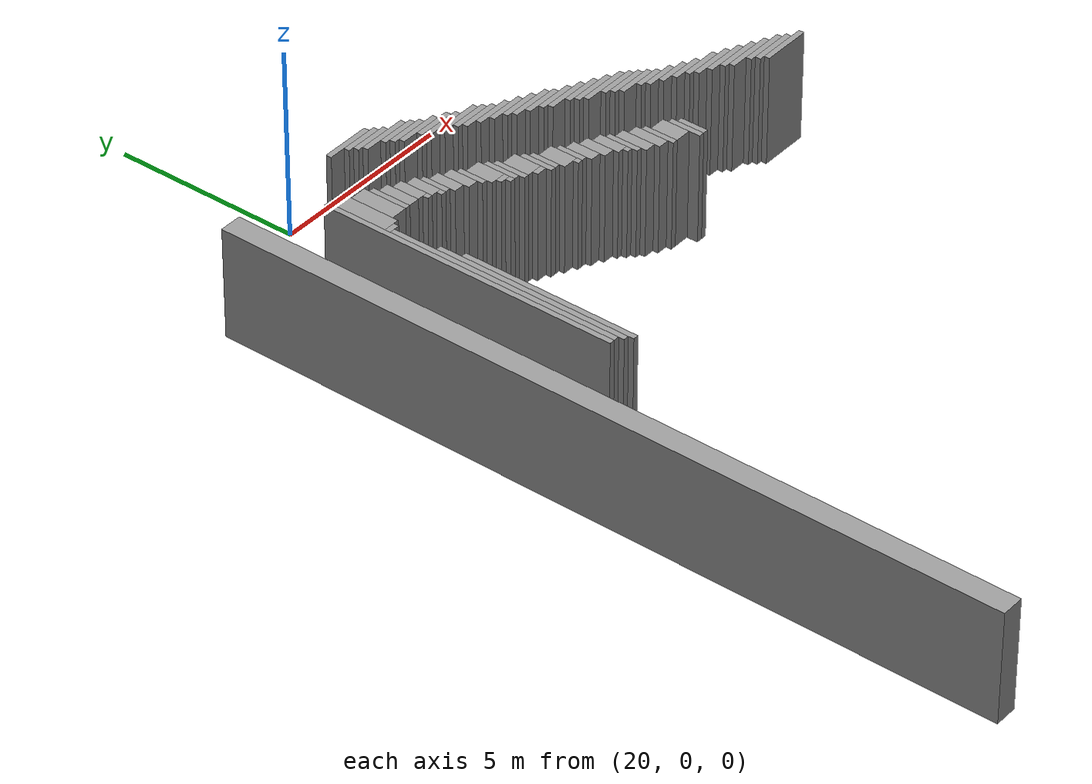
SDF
<sdf version="1.4">
 <model name="FunWorld1">
  <static>1</static>
  <link name="Wall_0">
   <collision name="Wall_0_Collision">
    <geometry><box><size>0.60000 21.15000 3.00000</size></box></geometry>
    <pose>18.00000 -10.57500 0 0 0 0.00000</pose>
   </collision>
   <visual name="Wall_0_Visual">
    <geometry><box><size>0.60000 21.15000 3.00000</size></box></geometry>
    <material>
     <script><uri>file://media/materials/scripts/gazebo.material</uri><name>Gazebo/Grey</name></script>
    </material>
    <pose>18.00000 -10.57500 0 0 0 0.00000</pose>
   </visual>
  </link>
  <link name="Wall_1">
   <collision name="Wall_1_Collision">
    <geometry><box><size>1.35000 0.15000 3.00000</size></box></geometry>
    <pose>21.97500 -0.07500 0 0 0 0.00000</pose>
   </collision>
   <visual name="Wall_1_Visual">
    <geometry><box><size>1.35000 0.15000 3.00000</size></box></geometry>
    <material>
     <script><uri>file://media/materials/scripts/gazebo.material</uri><name>Gazebo/Grey</name></script>
    </material>
    <pose>21.97500 -0.07500 0 0 0 0.00000</pose>
   </visual>
  </link>
  <link name="Wall_2">
   <collision name="Wall_2_Collision">
    <geometry><box><size>1.05000 0.15000 3.00000</size></box></geometry>
    <pose>22.27500 -0.22500 0 0 0 0.00000</pose>
   </collision>
   <visual name="Wall_2_Visual">
    <geometry><box><size>1.05000 0.15000 3.00000</size></box></geometry>
    <material>
     <script><uri>file://media/materials/scripts/gazebo.material</uri><name>Gazebo/Grey</name></script>
    </material>
    <pose>22.27500 -0.22500 0 0 0 0.00000</pose>
   </visual>
  </link>
  <link name="Wall_3">
   <collision name="Wall_3_Collision">
    <geometry><box><size>1.05000 0.15000 3.00000</size></box></geometry>
    <pose>22.42500 -0.37500 0 0 0 0.00000</pose>
   </collision>
   <visual name="Wall_3_Visual">
    <geometry><box><size>1.05000 0.15000 3.00000</size></box></geometry>
    <material>
     <script><uri>file://media/materials/scripts/gazebo.material</uri><name>Gazebo/Grey</name></script>
    </material>
    <pose>22.42500 -0.37500 0 0 0 0.00000</pose>
   </visual>
  </link>
  <link name="Wall_4">
   <collision name="Wall_4_Collision">
    <geometry><box><size>1.35000 0.15000 3.00000</size></box></geometry>
    <pose>22.72500 -0.52500 0 0 0 0.00000</pose>
   </collision>
   <visual name="Wall_4_Visual">
    <geometry><box><size>1.35000 0.15000 3.00000</size></box></geometry>
    <material>
     <script><uri>file://media/materials/scripts/gazebo.material</uri><name>Gazebo/Grey</name></script>
    </material>
    <pose>22.72500 -0.52500 0 0 0 0.00000</pose>
   </visual>
  </link>
  <link name="Wall_5">
   <collision name="Wall_5_Collision">
    <geometry><box><size>1.05000 0.15000 3.00000</size></box></geometry>
    <pose>23.02500 -0.67500 0 0 0 0.00000</pose>
   </collision>
   <visual name="Wall_5_Visual">
    <geometry><box><size>1.05000 0.15000 3.00000</size></box></geometry>
    <material>
     <script><uri>file://media/materials/scripts/gazebo.material</uri><name>Gazebo/Grey</name></script>
    </material>
    <pose>23.02500 -0.67500 0 0 0 0.00000</pose>
   </visual>
  </link>
  <link name="Wall_6">
   <collision name="Wall_6_Collision">
    <geometry><box><size>1.05000 0.15000 3.00000</size></box></geometry>
    <pose>23.17500 -0.82500 0 0 0 0.00000</pose>
   </collision>
   <visual name="Wall_6_Visual">
    <geometry><box><size>1.05000 0.15000 3.00000</size></box></geometry>
    <material>
     <script><uri>file://media/materials/scripts/gazebo.material</uri><name>Gazebo/Grey</name></script>
    </material>
    <pose>23.17500 -0.82500 0 0 0 0.00000</pose>
   </visual>
  </link>
  <link name="Wall_7">
   <collision name="Wall_7_Collision">
    <geometry><box><size>1.20000 0.15000 3.00000</size></box></geometry>
    <pose>23.40000 -0.97500 0 0 0 0.00000</pose>
   </collision>
   <visual name="Wall_7_Visual">
    <geometry><box><size>1.20000 0.15000 3.00000</size></box></geometry>
    <material>
     <script><uri>file://media/materials/scripts/gazebo.material</uri><name>Gazebo/Grey</name></script>
    </material>
    <pose>23.40000 -0.97500 0 0 0 0.00000</pose>
   </visual>
  </link>
  <link name="Wall_8">
   <collision name="Wall_8_Collision">
    <geometry><box><size>1.05000 0.15000 3.00000</size></box></geometry>
    <pose>23.77500 -1.12500 0 0 0 0.00000</pose>
   </collision>
   <visual name="Wall_8_Visual">
    <geometry><box><size>1.05000 0.15000 3.00000</size></box></geometry>
    <material>
     <script><uri>file://media/materials/scripts/gazebo.material</uri><name>Gazebo/Grey</name></script>
    </material>
    <pose>23.77500 -1.12500 0 0 0 0.00000</pose>
   </visual>
  </link>
  <link name="Wall_9">
   <collision name="Wall_9_Collision">
    <geometry><box><size>0.15000 8.10000 3.00000</size></box></geometry>
    <pose>19.87500 -5.25000 0 0 0 0.00000</pose>
   </collision>
   <visual name="Wall_9_Visual">
    <geometry><box><size>0.15000 8.10000 3.00000</size></box></geometry>
    <material>
     <script><uri>file://media/materials/scripts/gazebo.material</uri><name>Gazebo/Grey</name></script>
    </material>
    <pose>19.87500 -5.25000 0 0 0 0.00000</pose>
   </visual>
  </link>
  <link name="Wall_10">
   <collision name="Wall_10_Collision">
    <geometry><box><size>1.05000 0.15000 3.00000</size></box></geometry>
    <pose>23.92500 -1.27500 0 0 0 0.00000</pose>
   </collision>
   <visual name="Wall_10_Visual">
    <geometry><box><size>1.05000 0.15000 3.00000</size></box></geometry>
    <material>
     <script><uri>file://media/materials/scripts/gazebo.material</uri><name>Gazebo/Grey</name></script>
    </material>
    <pose>23.92500 -1.27500 0 0 0 0.00000</pose>
   </visual>
  </link>
  <link name="Wall_11">
   <collision name="Wall_11_Collision">
    <geometry><box><size>0.45000 1.50000 3.00000</size></box></geometry>
    <pose>20.17500 -2.10000 0 0 0 0.00000</pose>
   </collision>
   <visual name="Wall_11_Visual">
    <geometry><box><size>0.45000 1.50000 3.00000</size></box></geometry>
    <material>
     <script><uri>file://media/materials/scripts/gazebo.material</uri><name>Gazebo/Grey</name></script>
    </material>
    <pose>20.17500 -2.10000 0 0 0 0.00000</pose>
   </visual>
  </link>
  <link name="Wall_12">
   <collision name="Wall_12_Collision">
    <geometry><box><size>1.20000 0.15000 3.00000</size></box></geometry>
    <pose>24.30000 -1.42500 0 0 0 0.00000</pose>
   </collision>
   <visual name="Wall_12_Visual">
    <geometry><box><size>1.20000 0.15000 3.00000</size></box></geometry>
    <material>
     <script><uri>file://media/materials/scripts/gazebo.material</uri><name>Gazebo/Grey</name></script>
    </material>
    <pose>24.30000 -1.42500 0 0 0 0.00000</pose>
   </visual>
  </link>
  <link name="Wall_13">
   <collision name="Wall_13_Collision">
    <geometry><box><size>0.45000 1.20000 3.00000</size></box></geometry>
    <pose>20.62500 -2.10000 0 0 0 0.00000</pose>
   </collision>
   <visual name="Wall_13_Visual">
    <geometry><box><size>0.45000 1.20000 3.00000</size></box></geometry>
    <material>
     <script><uri>file://media/materials/scripts/gazebo.material</uri><name>Gazebo/Grey</name></script>
    </material>
    <pose>20.62500 -2.10000 0 0 0 0.00000</pose>
   </visual>
  </link>
  <link name="Wall_14">
   <collision name="Wall_14_Collision">
    <geometry><box><size>1.05000 0.15000 3.00000</size></box></geometry>
    <pose>24.52500 -1.57500 0 0 0 0.00000</pose>
   </collision>
   <visual name="Wall_14_Visual">
    <geometry><box><size>1.05000 0.15000 3.00000</size></box></geometry>
    <material>
     <script><uri>file://media/materials/scripts/gazebo.material</uri><name>Gazebo/Grey</name></script>
    </material>
    <pose>24.52500 -1.57500 0 0 0 0.00000</pose>
   </visual>
  </link>
  <link name="Wall_15">
   <collision name="Wall_15_Collision">
    <geometry><box><size>0.15000 1.05000 3.00000</size></box></geometry>
    <pose>20.92500 -2.17500 0 0 0 0.00000</pose>
   </collision>
   <visual name="Wall_15_Visual">
    <geometry><box><size>0.15000 1.05000 3.00000</size></box></geometry>
    <material>
     <script><uri>file://media/materials/scripts/gazebo.material</uri><name>Gazebo/Grey</name></script>
    </material>
    <pose>20.92500 -2.17500 0 0 0 0.00000</pose>
   </visual>
  </link>
  <link name="Wall_16">
   <collision name="Wall_16_Collision">
    <geometry><box><size>1.05000 0.15000 3.00000</size></box></geometry>
    <pose>24.67500 -1.72500 0 0 0 0.00000</pose>
   </collision>
   <visual name="Wall_16_Visual">
    <geometry><box><size>1.05000 0.15000 3.00000</size></box></geometry>
    <material>
     <script><uri>file://media/materials/scripts/gazebo.material</uri><name>Gazebo/Grey</name></script>
    </material>
    <pose>24.67500 -1.72500 0 0 0 0.00000</pose>
   </visual>
  </link>
  <link name="Wall_17">
   <collision name="Wall_17_Collision">
    <geometry><box><size>0.30000 0.90000 3.00000</size></box></geometry>
    <pose>21.15000 -2.25000 0 0 0 0.00000</pose>
   </collision>
   <visual name="Wall_17_Visual">
    <geometry><box><size>0.30000 0.90000 3.00000</size></box></geometry>
    <material>
     <script><uri>file://media/materials/scripts/gazebo.material</uri><name>Gazebo/Grey</name></script>
    </material>
    <pose>21.15000 -2.25000 0 0 0 0.00000</pose>
   </visual>
  </link>
  <link name="Wall_18">
   <collision name="Wall_18_Collision">
    <geometry><box><size>1.05000 0.15000 3.00000</size></box></geometry>
    <pose>24.97500 -1.87500 0 0 0 0.00000</pose>
   </collision>
   <visual name="Wall_18_Visual">
    <geometry><box><size>1.05000 0.15000 3.00000</size></box></geometry>
    <material>
     <script><uri>file://media/materials/scripts/gazebo.material</uri><name>Gazebo/Grey</name></script>
    </material>
    <pose>24.97500 -1.87500 0 0 0 0.00000</pose>
   </visual>
  </link>
  <link name="Wall_19">
   <collision name="Wall_19_Collision">
    <geometry><box><size>0.30000 0.75000 3.00000</size></box></geometry>
    <pose>21.45000 -2.32500 0 0 0 0.00000</pose>
   </collision>
   <visual name="Wall_19_Visual">
    <geometry><box><size>0.30000 0.75000 3.00000</size></box></geometry>
    <material>
     <script><uri>file://media/materials/scripts/gazebo.material</uri><name>Gazebo/Grey</name></script>
    </material>
    <pose>21.45000 -2.32500 0 0 0 0.00000</pose>
   </visual>
  </link>
  <link name="Wall_20">
   <collision name="Wall_20_Collision">
    <geometry><box><size>1.05000 0.15000 3.00000</size></box></geometry>
    <pose>25.27500 -2.02500 0 0 0 0.00000</pose>
   </collision>
   <visual name="Wall_20_Visual">
    <geometry><box><size>1.05000 0.15000 3.00000</size></box></geometry>
    <material>
     <script><uri>file://media/materials/scripts/gazebo.material</uri><name>Gazebo/Grey</name></script>
    </material>
    <pose>25.27500 -2.02500 0 0 0 0.00000</pose>
   </visual>
  </link>
  <link name="Wall_21">
   <collision name="Wall_21_Collision">
    <geometry><box><size>0.30000 0.75000 3.00000</size></box></geometry>
    <pose>21.75000 -2.47500 0 0 0 0.00000</pose>
   </collision>
   <visual name="Wall_21_Visual">
    <geometry><box><size>0.30000 0.75000 3.00000</size></box></geometry>
    <material>
     <script><uri>file://media/materials/scripts/gazebo.material</uri><name>Gazebo/Grey</name></script>
    </material>
    <pose>21.75000 -2.47500 0 0 0 0.00000</pose>
   </visual>
  </link>
  <link name="Wall_22">
   <collision name="Wall_22_Collision">
    <geometry><box><size>1.05000 0.15000 3.00000</size></box></geometry>
    <pose>25.57500 -2.17500 0 0 0 0.00000</pose>
   </collision>
   <visual name="Wall_22_Visual">
    <geometry><box><size>1.05000 0.15000 3.00000</size></box></geometry>
    <material>
     <script><uri>file://media/materials/scripts/gazebo.material</uri><name>Gazebo/Grey</name></script>
    </material>
    <pose>25.57500 -2.17500 0 0 0 0.00000</pose>
   </visual>
  </link>
  <link name="Wall_23">
   <collision name="Wall_23_Collision">
    <geometry><box><size>0.15000 0.75000 3.00000</size></box></geometry>
    <pose>21.97500 -2.62500 0 0 0 0.00000</pose>
   </collision>
   <visual name="Wall_23_Visual">
    <geometry><box><size>0.15000 0.75000 3.00000</size></box></geometry>
    <material>
     <script><uri>file://media/materials/scripts/gazebo.material</uri><name>Gazebo/Grey</name></script>
    </material>
    <pose>21.97500 -2.62500 0 0 0 0.00000</pose>
   </visual>
  </link>
  <link name="Wall_24">
   <collision name="Wall_24_Collision">
    <geometry><box><size>1.20000 0.15000 3.00000</size></box></geometry>
    <pose>25.80000 -2.32500 0 0 0 0.00000</pose>
   </collision>
   <visual name="Wall_24_Visual">
    <geometry><box><size>1.20000 0.15000 3.00000</size></box></geometry>
    <material>
     <script><uri>file://media/materials/scripts/gazebo.material</uri><name>Gazebo/Grey</name></script>
    </material>
    <pose>25.80000 -2.32500 0 0 0 0.00000</pose>
   </visual>
  </link>
  <link name="Wall_25">
   <collision name="Wall_25_Collision">
    <geometry><box><size>0.30000 0.75000 3.00000</size></box></geometry>
    <pose>22.20000 -2.77500 0 0 0 0.00000</pose>
   </collision>
   <visual name="Wall_25_Visual">
    <geometry><box><size>0.30000 0.75000 3.00000</size></box></geometry>
    <material>
     <script><uri>file://media/materials/scripts/gazebo.material</uri><name>Gazebo/Grey</name></script>
    </material>
    <pose>22.20000 -2.77500 0 0 0 0.00000</pose>
   </visual>
  </link>
  <link name="Wall_26">
   <collision name="Wall_26_Collision">
    <geometry><box><size>1.05000 0.15000 3.00000</size></box></geometry>
    <pose>26.02500 -2.47500 0 0 0 0.00000</pose>
   </collision>
   <visual name="Wall_26_Visual">
    <geometry><box><size>1.05000 0.15000 3.00000</size></box></geometry>
    <material>
     <script><uri>file://media/materials/scripts/gazebo.material</uri><name>Gazebo/Grey</name></script>
    </material>
    <pose>26.02500 -2.47500 0 0 0 0.00000</pose>
   </visual>
  </link>
  <link name="Wall_27">
   <collision name="Wall_27_Collision">
    <geometry><box><size>0.30000 0.75000 3.00000</size></box></geometry>
    <pose>22.50000 -2.92500 0 0 0 0.00000</pose>
   </collision>
   <visual name="Wall_27_Visual">
    <geometry><box><size>0.30000 0.75000 3.00000</size></box></geometry>
    <material>
     <script><uri>file://media/materials/scripts/gazebo.material</uri><name>Gazebo/Grey</name></script>
    </material>
    <pose>22.50000 -2.92500 0 0 0 0.00000</pose>
   </visual>
  </link>
  <link name="Wall_28">
   <collision name="Wall_28_Collision">
    <geometry><box><size>1.05000 0.15000 3.00000</size></box></geometry>
    <pose>26.32500 -2.62500 0 0 0 0.00000</pose>
   </collision>
   <visual name="Wall_28_Visual">
    <geometry><box><size>1.05000 0.15000 3.00000</size></box></geometry>
    <material>
     <script><uri>file://media/materials/scripts/gazebo.material</uri><name>Gazebo/Grey</name></script>
    </material>
    <pose>26.32500 -2.62500 0 0 0 0.00000</pose>
   </visual>
  </link>
  <link name="Wall_29">
   <collision name="Wall_29_Collision">
    <geometry><box><size>0.15000 0.15000 3.00000</size></box></geometry>
    <pose>21.52500 -2.77500 0 0 0 0.00000</pose>
   </collision>
   <visual name="Wall_29_Visual">
    <geometry><box><size>0.15000 0.15000 3.00000</size></box></geometry>
    <material>
     <script><uri>file://media/materials/scripts/gazebo.material</uri><name>Gazebo/Grey</name></script>
    </material>
    <pose>21.52500 -2.77500 0 0 0 0.00000</pose>
   </visual>
  </link>
  <link name="Wall_30">
   <collision name="Wall_30_Collision">
    <geometry><box><size>0.15000 0.75000 3.00000</size></box></geometry>
    <pose>22.72500 -3.07500 0 0 0 0.00000</pose>
   </collision>
   <visual name="Wall_30_Visual">
    <geometry><box><size>0.15000 0.75000 3.00000</size></box></geometry>
    <material>
     <script><uri>file://media/materials/scripts/gazebo.material</uri><name>Gazebo/Grey</name></script>
    </material>
    <pose>22.72500 -3.07500 0 0 0 0.00000</pose>
   </visual>
  </link>
  <link name="Wall_31">
   <collision name="Wall_31_Collision">
    <geometry><box><size>1.20000 0.15000 3.00000</size></box></geometry>
    <pose>26.55000 -2.77500 0 0 0 0.00000</pose>
   </collision>
   <visual name="Wall_31_Visual">
    <geometry><box><size>1.20000 0.15000 3.00000</size></box></geometry>
    <material>
     <script><uri>file://media/materials/scripts/gazebo.material</uri><name>Gazebo/Grey</name></script>
    </material>
    <pose>26.55000 -2.77500 0 0 0 0.00000</pose>
   </visual>
  </link>
  <link name="Wall_32">
   <collision name="Wall_32_Collision">
    <geometry><box><size>0.30000 0.15000 3.00000</size></box></geometry>
    <pose>20.10000 -2.92500 0 0 0 0.00000</pose>
   </collision>
   <visual name="Wall_32_Visual">
    <geometry><box><size>0.30000 0.15000 3.00000</size></box></geometry>
    <material>
     <script><uri>file://media/materials/scripts/gazebo.material</uri><name>Gazebo/Grey</name></script>
    </material>
    <pose>20.10000 -2.92500 0 0 0 0.00000</pose>
   </visual>
  </link>
  <link name="Wall_33">
   <collision name="Wall_33_Collision">
    <geometry><box><size>0.15000 0.15000 3.00000</size></box></geometry>
    <pose>21.82500 -2.92500 0 0 0 0.00000</pose>
   </collision>
   <visual name="Wall_33_Visual">
    <geometry><box><size>0.15000 0.15000 3.00000</size></box></geometry>
    <material>
     <script><uri>file://media/materials/scripts/gazebo.material</uri><name>Gazebo/Grey</name></script>
    </material>
    <pose>21.82500 -2.92500 0 0 0 0.00000</pose>
   </visual>
  </link>
  <link name="Wall_34">
   <collision name="Wall_34_Collision">
    <geometry><box><size>0.45000 0.75000 3.00000</size></box></geometry>
    <pose>23.02500 -3.22500 0 0 0 0.00000</pose>
   </collision>
   <visual name="Wall_34_Visual">
    <geometry><box><size>0.45000 0.75000 3.00000</size></box></geometry>
    <material>
     <script><uri>file://media/materials/scripts/gazebo.material</uri><name>Gazebo/Grey</name></script>
    </material>
    <pose>23.02500 -3.22500 0 0 0 0.00000</pose>
   </visual>
  </link>
  <link name="Wall_35">
   <collision name="Wall_35_Collision">
    <geometry><box><size>1.05000 0.15000 3.00000</size></box></geometry>
    <pose>26.92500 -2.92500 0 0 0 0.00000</pose>
   </collision>
   <visual name="Wall_35_Visual">
    <geometry><box><size>1.05000 0.15000 3.00000</size></box></geometry>
    <material>
     <script><uri>file://media/materials/scripts/gazebo.material</uri><name>Gazebo/Grey</name></script>
    </material>
    <pose>26.92500 -2.92500 0 0 0 0.00000</pose>
   </visual>
  </link>
  <link name="Wall_36">
   <collision name="Wall_36_Collision">
    <geometry><box><size>0.15000 6.30000 3.00000</size></box></geometry>
    <pose>20.02500 -6.15000 0 0 0 0.00000</pose>
   </collision>
   <visual name="Wall_36_Visual">
    <geometry><box><size>0.15000 6.30000 3.00000</size></box></geometry>
    <material>
     <script><uri>file://media/materials/scripts/gazebo.material</uri><name>Gazebo/Grey</name></script>
    </material>
    <pose>20.02500 -6.15000 0 0 0 0.00000</pose>
   </visual>
  </link>
  <link name="Wall_37">
   <collision name="Wall_37_Collision">
    <geometry><box><size>0.15000 0.90000 3.00000</size></box></geometry>
    <pose>23.32500 -3.45000 0 0 0 0.00000</pose>
   </collision>
   <visual name="Wall_37_Visual">
    <geometry><box><size>0.15000 0.90000 3.00000</size></box></geometry>
    <material>
     <script><uri>file://media/materials/scripts/gazebo.material</uri><name>Gazebo/Grey</name></script>
    </material>
    <pose>23.32500 -3.45000 0 0 0 0.00000</pose>
   </visual>
  </link>
  <link name="Wall_38">
   <collision name="Wall_38_Collision">
    <geometry><box><size>1.20000 0.15000 3.00000</size></box></geometry>
    <pose>27.15000 -3.07500 0 0 0 0.00000</pose>
   </collision>
   <visual name="Wall_38_Visual">
    <geometry><box><size>1.20000 0.15000 3.00000</size></box></geometry>
    <material>
     <script><uri>file://media/materials/scripts/gazebo.material</uri><name>Gazebo/Grey</name></script>
    </material>
    <pose>27.15000 -3.07500 0 0 0 0.00000</pose>
   </visual>
  </link>
  <link name="Wall_39">
   <collision name="Wall_39_Collision">
    <geometry><box><size>0.15000 0.90000 3.00000</size></box></geometry>
    <pose>23.47500 -3.60000 0 0 0 0.00000</pose>
   </collision>
   <visual name="Wall_39_Visual">
    <geometry><box><size>0.15000 0.90000 3.00000</size></box></geometry>
    <material>
     <script><uri>file://media/materials/scripts/gazebo.material</uri><name>Gazebo/Grey</name></script>
    </material>
    <pose>23.47500 -3.60000 0 0 0 0.00000</pose>
   </visual>
  </link>
  <link name="Wall_40">
   <collision name="Wall_40_Collision">
    <geometry><box><size>1.35000 0.15000 3.00000</size></box></geometry>
    <pose>27.37500 -3.22500 0 0 0 0.00000</pose>
   </collision>
   <visual name="Wall_40_Visual">
    <geometry><box><size>1.35000 0.15000 3.00000</size></box></geometry>
    <material>
     <script><uri>file://media/materials/scripts/gazebo.material</uri><name>Gazebo/Grey</name></script>
    </material>
    <pose>27.37500 -3.22500 0 0 0 0.00000</pose>
   </visual>
  </link>
  <link name="Wall_41">
   <collision name="Wall_41_Collision">
    <geometry><box><size>0.45000 0.75000 3.00000</size></box></geometry>
    <pose>23.77500 -3.67500 0 0 0 0.00000</pose>
   </collision>
   <visual name="Wall_41_Visual">
    <geometry><box><size>0.45000 0.75000 3.00000</size></box></geometry>
    <material>
     <script><uri>file://media/materials/scripts/gazebo.material</uri><name>Gazebo/Grey</name></script>
    </material>
    <pose>23.77500 -3.67500 0 0 0 0.00000</pose>
   </visual>
  </link>
  <link name="Wall_42">
   <collision name="Wall_42_Collision">
    <geometry><box><size>1.05000 0.15000 3.00000</size></box></geometry>
    <pose>27.67500 -3.37500 0 0 0 0.00000</pose>
   </collision>
   <visual name="Wall_42_Visual">
    <geometry><box><size>1.05000 0.15000 3.00000</size></box></geometry>
    <material>
     <script><uri>file://media/materials/scripts/gazebo.material</uri><name>Gazebo/Grey</name></script>
    </material>
    <pose>27.67500 -3.37500 0 0 0 0.00000</pose>
   </visual>
  </link>
  <link name="Wall_43">
   <collision name="Wall_43_Collision">
    <geometry><box><size>0.15000 0.90000 3.00000</size></box></geometry>
    <pose>24.07500 -3.90000 0 0 0 0.00000</pose>
   </collision>
   <visual name="Wall_43_Visual">
    <geometry><box><size>0.15000 0.90000 3.00000</size></box></geometry>
    <material>
     <script><uri>file://media/materials/scripts/gazebo.material</uri><name>Gazebo/Grey</name></script>
    </material>
    <pose>24.07500 -3.90000 0 0 0 0.00000</pose>
   </visual>
  </link>
  <link name="Wall_44">
   <collision name="Wall_44_Collision">
    <geometry><box><size>1.05000 0.15000 3.00000</size></box></geometry>
    <pose>27.82500 -3.52500 0 0 0 0.00000</pose>
   </collision>
   <visual name="Wall_44_Visual">
    <geometry><box><size>1.05000 0.15000 3.00000</size></box></geometry>
    <material>
     <script><uri>file://media/materials/scripts/gazebo.material</uri><name>Gazebo/Grey</name></script>
    </material>
    <pose>27.82500 -3.52500 0 0 0 0.00000</pose>
   </visual>
  </link>
  <link name="Wall_45">
   <collision name="Wall_45_Collision">
    <geometry><box><size>0.30000 0.15000 3.00000</size></box></geometry>
    <pose>23.10000 -3.67500 0 0 0 0.00000</pose>
   </collision>
   <visual name="Wall_45_Visual">
    <geometry><box><size>0.30000 0.15000 3.00000</size></box></geometry>
    <material>
     <script><uri>file://media/materials/scripts/gazebo.material</uri><name>Gazebo/Grey</name></script>
    </material>
    <pose>23.10000 -3.67500 0 0 0 0.00000</pose>
   </visual>
  </link>
  <link name="Wall_46">
   <collision name="Wall_46_Collision">
    <geometry><box><size>0.15000 0.75000 3.00000</size></box></geometry>
    <pose>24.22500 -3.97500 0 0 0 0.00000</pose>
   </collision>
   <visual name="Wall_46_Visual">
    <geometry><box><size>0.15000 0.75000 3.00000</size></box></geometry>
    <material>
     <script><uri>file://media/materials/scripts/gazebo.material</uri><name>Gazebo/Grey</name></script>
    </material>
    <pose>24.22500 -3.97500 0 0 0 0.00000</pose>
   </visual>
  </link>
  <link name="Wall_47">
   <collision name="Wall_47_Collision">
    <geometry><box><size>1.05000 0.15000 3.00000</size></box></geometry>
    <pose>27.97500 -3.67500 0 0 0 0.00000</pose>
   </collision>
   <visual name="Wall_47_Visual">
    <geometry><box><size>1.05000 0.15000 3.00000</size></box></geometry>
    <material>
     <script><uri>file://media/materials/scripts/gazebo.material</uri><name>Gazebo/Grey</name></script>
    </material>
    <pose>27.97500 -3.67500 0 0 0 0.00000</pose>
   </visual>
  </link>
  <link name="Wall_48">
   <collision name="Wall_48_Collision">
    <geometry><box><size>0.15000 0.15000 3.00000</size></box></geometry>
    <pose>23.17500 -3.82500 0 0 0 0.00000</pose>
   </collision>
   <visual name="Wall_48_Visual">
    <geometry><box><size>0.15000 0.15000 3.00000</size></box></geometry>
    <material>
     <script><uri>file://media/materials/scripts/gazebo.material</uri><name>Gazebo/Grey</name></script>
    </material>
    <pose>23.17500 -3.82500 0 0 0 0.00000</pose>
   </visual>
  </link>
  <link name="Wall_49">
   <collision name="Wall_49_Collision">
    <geometry><box><size>0.45000 0.75000 3.00000</size></box></geometry>
    <pose>24.52500 -4.12500 0 0 0 0.00000</pose>
   </collision>
   <visual name="Wall_49_Visual">
    <geometry><box><size>0.45000 0.75000 3.00000</size></box></geometry>
    <material>
     <script><uri>file://media/materials/scripts/gazebo.material</uri><name>Gazebo/Grey</name></script>
    </material>
    <pose>24.52500 -4.12500 0 0 0 0.00000</pose>
   </visual>
  </link>
  <link name="Wall_50">
   <collision name="Wall_50_Collision">
    <geometry><box><size>0.75000 0.15000 3.00000</size></box></geometry>
    <pose>28.27500 -3.82500 0 0 0 0.00000</pose>
   </collision>
   <visual name="Wall_50_Visual">
    <geometry><box><size>0.75000 0.15000 3.00000</size></box></geometry>
    <material>
     <script><uri>file://media/materials/scripts/gazebo.material</uri><name>Gazebo/Grey</name></script>
    </material>
    <pose>28.27500 -3.82500 0 0 0 0.00000</pose>
   </visual>
  </link>
  <link name="Wall_51">
   <collision name="Wall_51_Collision">
    <geometry><box><size>0.15000 0.75000 3.00000</size></box></geometry>
    <pose>24.82500 -4.27500 0 0 0 0.00000</pose>
   </collision>
   <visual name="Wall_51_Visual">
    <geometry><box><size>0.15000 0.75000 3.00000</size></box></geometry>
    <material>
     <script><uri>file://media/materials/scripts/gazebo.material</uri><name>Gazebo/Grey</name></script>
    </material>
    <pose>24.82500 -4.27500 0 0 0 0.00000</pose>
   </visual>
  </link>
  <link name="Wall_52">
   <collision name="Wall_52_Collision">
    <geometry><box><size>0.90000 0.15000 3.00000</size></box></geometry>
    <pose>28.50000 -3.97500 0 0 0 0.00000</pose>
   </collision>
   <visual name="Wall_52_Visual">
    <geometry><box><size>0.90000 0.15000 3.00000</size></box></geometry>
    <material>
     <script><uri>file://media/materials/scripts/gazebo.material</uri><name>Gazebo/Grey</name></script>
    </material>
    <pose>28.50000 -3.97500 0 0 0 0.00000</pose>
   </visual>
  </link>
  <link name="Wall_53">
   <collision name="Wall_53_Collision">
    <geometry><box><size>0.30000 0.15000 3.00000</size></box></geometry>
    <pose>23.85000 -4.12500 0 0 0 0.00000</pose>
   </collision>
   <visual name="Wall_53_Visual">
    <geometry><box><size>0.30000 0.15000 3.00000</size></box></geometry>
    <material>
     <script><uri>file://media/materials/scripts/gazebo.material</uri><name>Gazebo/Grey</name></script>
    </material>
    <pose>23.85000 -4.12500 0 0 0 0.00000</pose>
   </visual>
  </link>
  <link name="Wall_54">
   <collision name="Wall_54_Collision">
    <geometry><box><size>0.30000 0.75000 3.00000</size></box></geometry>
    <pose>25.05000 -4.42500 0 0 0 0.00000</pose>
   </collision>
   <visual name="Wall_54_Visual">
    <geometry><box><size>0.30000 0.75000 3.00000</size></box></geometry>
    <material>
     <script><uri>file://media/materials/scripts/gazebo.material</uri><name>Gazebo/Grey</name></script>
    </material>
    <pose>25.05000 -4.42500 0 0 0 0.00000</pose>
   </visual>
  </link>
  <link name="Wall_55">
   <collision name="Wall_55_Collision">
    <geometry><box><size>0.90000 0.15000 3.00000</size></box></geometry>
    <pose>28.80000 -4.12500 0 0 0 0.00000</pose>
   </collision>
   <visual name="Wall_55_Visual">
    <geometry><box><size>0.90000 0.15000 3.00000</size></box></geometry>
    <material>
     <script><uri>file://media/materials/scripts/gazebo.material</uri><name>Gazebo/Grey</name></script>
    </material>
    <pose>28.80000 -4.12500 0 0 0 0.00000</pose>
   </visual>
  </link>
  <link name="Wall_56">
   <collision name="Wall_56_Collision">
    <geometry><box><size>0.15000 5.25000 3.00000</size></box></geometry>
    <pose>20.17500 -6.82500 0 0 0 0.00000</pose>
   </collision>
   <visual name="Wall_56_Visual">
    <geometry><box><size>0.15000 5.25000 3.00000</size></box></geometry>
    <material>
     <script><uri>file://media/materials/scripts/gazebo.material</uri><name>Gazebo/Grey</name></script>
    </material>
    <pose>20.17500 -6.82500 0 0 0 0.00000</pose>
   </visual>
  </link>
  <link name="Wall_57">
   <collision name="Wall_57_Collision">
    <geometry><box><size>0.30000 0.75000 3.00000</size></box></geometry>
    <pose>25.35000 -4.57500 0 0 0 0.00000</pose>
   </collision>
   <visual name="Wall_57_Visual">
    <geometry><box><size>0.30000 0.75000 3.00000</size></box></geometry>
    <material>
     <script><uri>file://media/materials/scripts/gazebo.material</uri><name>Gazebo/Grey</name></script>
    </material>
    <pose>25.35000 -4.57500 0 0 0 0.00000</pose>
   </visual>
  </link>
  <link name="Wall_58">
   <collision name="Wall_58_Collision">
    <geometry><box><size>0.90000 0.15000 3.00000</size></box></geometry>
    <pose>29.10000 -4.27500 0 0 0 0.00000</pose>
   </collision>
   <visual name="Wall_58_Visual">
    <geometry><box><size>0.90000 0.15000 3.00000</size></box></geometry>
    <material>
     <script><uri>file://media/materials/scripts/gazebo.material</uri><name>Gazebo/Grey</name></script>
    </material>
    <pose>29.10000 -4.27500 0 0 0 0.00000</pose>
   </visual>
  </link>
  <link name="Wall_59">
   <collision name="Wall_59_Collision">
    <geometry><box><size>0.30000 0.75000 3.00000</size></box></geometry>
    <pose>25.65000 -4.72500 0 0 0 0.00000</pose>
   </collision>
   <visual name="Wall_59_Visual">
    <geometry><box><size>0.30000 0.75000 3.00000</size></box></geometry>
    <material>
     <script><uri>file://media/materials/scripts/gazebo.material</uri><name>Gazebo/Grey</name></script>
    </material>
    <pose>25.65000 -4.72500 0 0 0 0.00000</pose>
   </visual>
  </link>
  <link name="Wall_60">
   <collision name="Wall_60_Collision">
    <geometry><box><size>1.05000 0.15000 3.00000</size></box></geometry>
    <pose>29.47500 -4.42500 0 0 0 0.00000</pose>
   </collision>
   <visual name="Wall_60_Visual">
    <geometry><box><size>1.05000 0.15000 3.00000</size></box></geometry>
    <material>
     <script><uri>file://media/materials/scripts/gazebo.material</uri><name>Gazebo/Grey</name></script>
    </material>
    <pose>29.47500 -4.42500 0 0 0 0.00000</pose>
   </visual>
  </link>
  <link name="Wall_61">
   <collision name="Wall_61_Collision">
    <geometry><box><size>0.15000 0.15000 3.00000</size></box></geometry>
    <pose>24.67500 -4.57500 0 0 0 0.00000</pose>
   </collision>
   <visual name="Wall_61_Visual">
    <geometry><box><size>0.15000 0.15000 3.00000</size></box></geometry>
    <material>
     <script><uri>file://media/materials/scripts/gazebo.material</uri><name>Gazebo/Grey</name></script>
    </material>
    <pose>24.67500 -4.57500 0 0 0 0.00000</pose>
   </visual>
  </link>
  <link name="Wall_62">
   <collision name="Wall_62_Collision">
    <geometry><box><size>0.15000 0.90000 3.00000</size></box></geometry>
    <pose>25.87500 -4.95000 0 0 0 0.00000</pose>
   </collision>
   <visual name="Wall_62_Visual">
    <geometry><box><size>0.15000 0.90000 3.00000</size></box></geometry>
    <material>
     <script><uri>file://media/materials/scripts/gazebo.material</uri><name>Gazebo/Grey</name></script>
    </material>
    <pose>25.87500 -4.95000 0 0 0 0.00000</pose>
   </visual>
  </link>
  <link name="Wall_63">
   <collision name="Wall_63_Collision">
    <geometry><box><size>1.20000 0.15000 3.00000</size></box></geometry>
    <pose>29.70000 -4.57500 0 0 0 0.00000</pose>
   </collision>
   <visual name="Wall_63_Visual">
    <geometry><box><size>1.20000 0.15000 3.00000</size></box></geometry>
    <material>
     <script><uri>file://media/materials/scripts/gazebo.material</uri><name>Gazebo/Grey</name></script>
    </material>
    <pose>29.70000 -4.57500 0 0 0 0.00000</pose>
   </visual>
  </link>
  <link name="Wall_64">
   <collision name="Wall_64_Collision">
    <geometry><box><size>0.30000 0.90000 3.00000</size></box></geometry>
    <pose>26.10000 -5.10000 0 0 0 0.00000</pose>
   </collision>
   <visual name="Wall_64_Visual">
    <geometry><box><size>0.30000 0.90000 3.00000</size></box></geometry>
    <material>
     <script><uri>file://media/materials/scripts/gazebo.material</uri><name>Gazebo/Grey</name></script>
    </material>
    <pose>26.10000 -5.10000 0 0 0 0.00000</pose>
   </visual>
  </link>
  <link name="Wall_65">
   <collision name="Wall_65_Collision">
    <geometry><box><size>1.20000 0.15000 3.00000</size></box></geometry>
    <pose>30.00000 -4.72500 0 0 0 0.00000</pose>
   </collision>
   <visual name="Wall_65_Visual">
    <geometry><box><size>1.20000 0.15000 3.00000</size></box></geometry>
    <material>
     <script><uri>file://media/materials/scripts/gazebo.material</uri><name>Gazebo/Grey</name></script>
    </material>
    <pose>30.00000 -4.72500 0 0 0 0.00000</pose>
   </visual>
  </link>
  <link name="Wall_66">
   <collision name="Wall_66_Collision">
    <geometry><box><size>0.15000 4.80000 3.00000</size></box></geometry>
    <pose>20.32500 -7.20000 0 0 0 0.00000</pose>
   </collision>
   <visual name="Wall_66_Visual">
    <geometry><box><size>0.15000 4.80000 3.00000</size></box></geometry>
    <material>
     <script><uri>file://media/materials/scripts/gazebo.material</uri><name>Gazebo/Grey</name></script>
    </material>
    <pose>20.32500 -7.20000 0 0 0 0.00000</pose>
   </visual>
  </link>
  <link name="Wall_67">
   <collision name="Wall_67_Collision">
    <geometry><box><size>0.30000 0.90000 3.00000</size></box></geometry>
    <pose>26.40000 -5.25000 0 0 0 0.00000</pose>
   </collision>
   <visual name="Wall_67_Visual">
    <geometry><box><size>0.30000 0.90000 3.00000</size></box></geometry>
    <material>
     <script><uri>file://media/materials/scripts/gazebo.material</uri><name>Gazebo/Grey</name></script>
    </material>
    <pose>26.40000 -5.25000 0 0 0 0.00000</pose>
   </visual>
  </link>
  <link name="Wall_68">
   <collision name="Wall_68_Collision">
    <geometry><box><size>1.20000 0.15000 3.00000</size></box></geometry>
    <pose>30.30000 -4.87500 0 0 0 0.00000</pose>
   </collision>
   <visual name="Wall_68_Visual">
    <geometry><box><size>1.20000 0.15000 3.00000</size></box></geometry>
    <material>
     <script><uri>file://media/materials/scripts/gazebo.material</uri><name>Gazebo/Grey</name></script>
    </material>
    <pose>30.30000 -4.87500 0 0 0 0.00000</pose>
   </visual>
  </link>
  <link name="Wall_69">
   <collision name="Wall_69_Collision">
    <geometry><box><size>0.15000 0.90000 3.00000</size></box></geometry>
    <pose>26.62500 -5.40000 0 0 0 0.00000</pose>
   </collision>
   <visual name="Wall_69_Visual">
    <geometry><box><size>0.15000 0.90000 3.00000</size></box></geometry>
    <material>
     <script><uri>file://media/materials/scripts/gazebo.material</uri><name>Gazebo/Grey</name></script>
    </material>
    <pose>26.62500 -5.40000 0 0 0 0.00000</pose>
   </visual>
  </link>
  <link name="Wall_70">
   <collision name="Wall_70_Collision">
    <geometry><box><size>1.35000 0.15000 3.00000</size></box></geometry>
    <pose>30.52500 -5.02500 0 0 0 0.00000</pose>
   </collision>
   <visual name="Wall_70_Visual">
    <geometry><box><size>1.35000 0.15000 3.00000</size></box></geometry>
    <material>
     <script><uri>file://media/materials/scripts/gazebo.material</uri><name>Gazebo/Grey</name></script>
    </material>
    <pose>30.52500 -5.02500 0 0 0 0.00000</pose>
   </visual>
  </link>
  <link name="Wall_71">
   <collision name="Wall_71_Collision">
    <geometry><box><size>0.15000 0.15000 3.00000</size></box></geometry>
    <pose>25.72500 -5.17500 0 0 0 0.00000</pose>
   </collision>
   <visual name="Wall_71_Visual">
    <geometry><box><size>0.15000 0.15000 3.00000</size></box></geometry>
    <material>
     <script><uri>file://media/materials/scripts/gazebo.material</uri><name>Gazebo/Grey</name></script>
    </material>
    <pose>25.72500 -5.17500 0 0 0 0.00000</pose>
   </visual>
  </link>
  <link name="Wall_72">
   <collision name="Wall_72_Collision">
    <geometry><box><size>0.45000 0.75000 3.00000</size></box></geometry>
    <pose>26.92500 -5.47500 0 0 0 0.00000</pose>
   </collision>
   <visual name="Wall_72_Visual">
    <geometry><box><size>0.45000 0.75000 3.00000</size></box></geometry>
    <material>
     <script><uri>file://media/materials/scripts/gazebo.material</uri><name>Gazebo/Grey</name></script>
    </material>
    <pose>26.92500 -5.47500 0 0 0 0.00000</pose>
   </visual>
  </link>
  <link name="Wall_73">
   <collision name="Wall_73_Collision">
    <geometry><box><size>1.20000 0.15000 3.00000</size></box></geometry>
    <pose>30.90000 -5.17500 0 0 0 0.00000</pose>
   </collision>
   <visual name="Wall_73_Visual">
    <geometry><box><size>1.20000 0.15000 3.00000</size></box></geometry>
    <material>
     <script><uri>file://media/materials/scripts/gazebo.material</uri><name>Gazebo/Grey</name></script>
    </material>
    <pose>30.90000 -5.17500 0 0 0 0.00000</pose>
   </visual>
  </link>
  <link name="Wall_74">
   <collision name="Wall_74_Collision">
    <geometry><box><size>0.15000 0.90000 3.00000</size></box></geometry>
    <pose>27.22500 -5.70000 0 0 0 0.00000</pose>
   </collision>
   <visual name="Wall_74_Visual">
    <geometry><box><size>0.15000 0.90000 3.00000</size></box></geometry>
    <material>
     <script><uri>file://media/materials/scripts/gazebo.material</uri><name>Gazebo/Grey</name></script>
    </material>
    <pose>27.22500 -5.70000 0 0 0 0.00000</pose>
   </visual>
  </link>
  <link name="Wall_75">
   <collision name="Wall_75_Collision">
    <geometry><box><size>1.20000 0.15000 3.00000</size></box></geometry>
    <pose>31.05000 -5.32500 0 0 0 0.00000</pose>
   </collision>
   <visual name="Wall_75_Visual">
    <geometry><box><size>1.20000 0.15000 3.00000</size></box></geometry>
    <material>
     <script><uri>file://media/materials/scripts/gazebo.material</uri><name>Gazebo/Grey</name></script>
    </material>
    <pose>31.05000 -5.32500 0 0 0 0.00000</pose>
   </visual>
  </link>
  <link name="Wall_76">
   <collision name="Wall_76_Collision">
    <geometry><box><size>0.15000 0.75000 3.00000</size></box></geometry>
    <pose>27.37500 -5.77500 0 0 0 0.00000</pose>
   </collision>
   <visual name="Wall_76_Visual">
    <geometry><box><size>0.15000 0.75000 3.00000</size></box></geometry>
    <material>
     <script><uri>file://media/materials/scripts/gazebo.material</uri><name>Gazebo/Grey</name></script>
    </material>
    <pose>27.37500 -5.77500 0 0 0 0.00000</pose>
   </visual>
  </link>
  <link name="Wall_77">
   <collision name="Wall_77_Collision">
    <geometry><box><size>1.35000 0.15000 3.00000</size></box></geometry>
    <pose>31.27500 -5.47500 0 0 0 0.00000</pose>
   </collision>
   <visual name="Wall_77_Visual">
    <geometry><box><size>1.35000 0.15000 3.00000</size></box></geometry>
    <material>
     <script><uri>file://media/materials/scripts/gazebo.material</uri><name>Gazebo/Grey</name></script>
    </material>
    <pose>31.27500 -5.47500 0 0 0 0.00000</pose>
   </visual>
  </link>
 </model>
</sdf>
